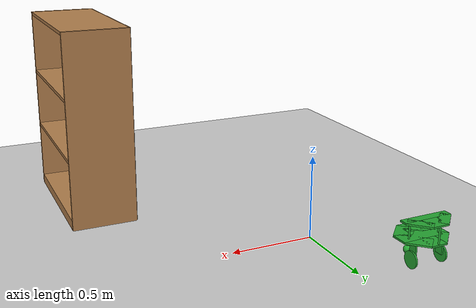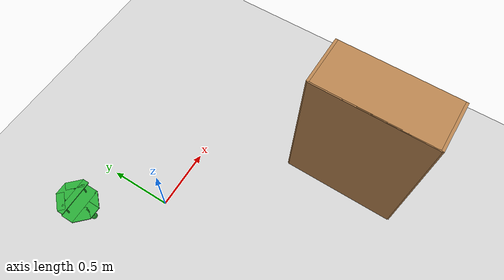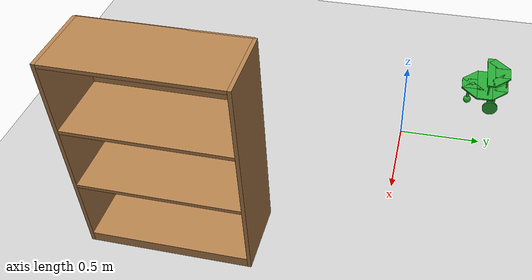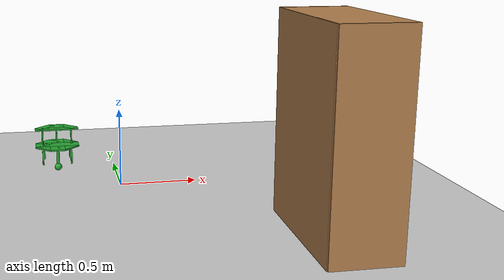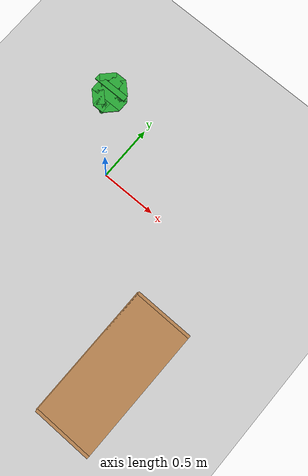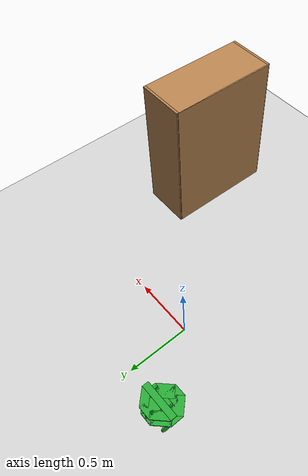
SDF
<sdf version="1.6">
 <world name="default">
  <model name="ground_plane">
   <static>1</static>
   <link name="link">
    <collision name="collision">
     <geometry><plane><normal>0 0 1</normal><size>100 100</size></plane></geometry>
     <surface><friction><ode><mu>100</mu><mu2>50</mu2></ode></friction></surface>
    </collision>
    <visual name="visual">
     <cast_shadows>0</cast_shadows>
     <geometry><plane><normal>0 0 1</normal><size>100 100</size></plane></geometry>
     <material>
      <script><uri>file://media/materials/scripts/gazebo.material</uri><name>Gazebo/Grey</name></script>
     </material>
    </visual>
   </link>
  </model>
  <model name="bookshelf_clone_1">
   <static>1</static>
   <link name="link">
    <inertial><mass>1</mass></inertial>
    <collision name="back">
     <pose>0 0.005 0.6 0 -0 0</pose>
     <geometry><box><size>0.9 0.01 1.2</size></box></geometry>
    </collision>
    <visual name="visual1">
     <pose>0 0.005 0.6 0 -0 0</pose>
     <geometry><box><size>0.9 0.01 1.2</size></box></geometry>
     <material>
      <script><uri>file://media/materials/scripts/gazebo.material</uri><name>Gazebo/Wood</name></script>
     </material>
    </visual>
    <collision name="left_side">
     <pose>0.45 -0.195 0.6 0 -0 0</pose>
     <geometry><box><size>0.02 0.4 1.2</size></box></geometry>
    </collision>
    <visual name="visual2">
     <pose>0.45 -0.195 0.6 0 -0 0</pose>
     <geometry><box><size>0.02 0.4 1.2</size></box></geometry>
     <material>
      <script><uri>file://media/materials/scripts/gazebo.material</uri><name>Gazebo/Wood</name></script>
     </material>
    </visual>
    <collision name="right_side">
     <pose>-0.45 -0.195 0.6 0 -0 0</pose>
     <geometry><box><size>0.02 0.4 1.2</size></box></geometry>
    </collision>
    <visual name="visual3">
     <pose>-0.45 -0.195 0.6 0 -0 0</pose>
     <geometry><box><size>0.02 0.4 1.2</size></box></geometry>
     <material>
      <script><uri>file://media/materials/scripts/gazebo.material</uri><name>Gazebo/Wood</name></script>
     </material>
    </visual>
    <collision name="bottom">
     <pose>0 -0.195 0.03 0 -0 0</pose>
     <geometry><box><size>0.88 0.4 0.06</size></box></geometry>
    </collision>
    <visual name="visual4">
     <pose>0 -0.195 0.03 0 -0 0</pose>
     <geometry><box><size>0.88 0.4 0.06</size></box></geometry>
     <material>
      <script><uri>file://media/materials/scripts/gazebo.material</uri><name>Gazebo/Wood</name></script>
     </material>
    </visual>
    <collision name="top">
     <pose>0 -0.195 1.19 0 -0 0</pose>
     <geometry><box><size>0.88 0.4 0.02</size></box></geometry>
    </collision>
    <visual name="visual5">
     <pose>0 -0.195 1.19 0 -0 0</pose>
     <geometry><box><size>0.88 0.4 0.02</size></box></geometry>
     <material>
      <script><uri>file://media/materials/scripts/gazebo.material</uri><name>Gazebo/Wood</name></script>
     </material>
    </visual>
    <collision name="low_shelf">
     <pose>0 -0.195 0.43 0 -0 0</pose>
     <geometry><box><size>0.88 0.4 0.02</size></box></geometry>
    </collision>
    <visual name="visual6">
     <pose>0 -0.195 0.43 0 -0 0</pose>
     <geometry><box><size>0.88 0.4 0.02</size></box></geometry>
     <material>
      <script><uri>file://media/materials/scripts/gazebo.material</uri><name>Gazebo/Wood</name></script>
     </material>
    </visual>
    <collision name="high_shelf">
     <pose>0 -0.195 0.8 0 -0 0</pose>
     <geometry><box><size>0.88 0.4 0.02</size></box></geometry>
    </collision>
    <visual name="visual7">
     <pose>0 -0.195 0.8 0 -0 0</pose>
     <geometry><box><size>0.88 0.4 0.02</size></box></geometry>
     <material>
      <script><uri>file://media/materials/scripts/gazebo.material</uri><name>Gazebo/Wood</name></script>
     </material>
    </visual>
   </link>
   <pose>0.848957 -1.11621 0 0 -0 1.56105</pose>
  </model>
  <model name="devRobot">
   <link name="base">
    <pose>0 0 0.155 0 -0 0</pose>
    <inertial>
     <mass>1.5</mass>
     <inertia>
      <ixx>0.166667</ixx>
      <ixy>0</ixy>
      <ixz>0</ixz>
      <iyy>0.166667</iyy>
      <iyz>0</iyz>
      <izz>0.166667</izz>
     </inertia>
    </inertial>
    <visual name="visual">
     <geometry><box><size>0.3 0.1 0.01</size></box></geometry>
     <material>
      <lighting>1</lighting>
      <script><uri>file://media/materials/scripts/gazebo.material</uri><name>Gazebo/Green</name></script>
      <shader type="pixel"><normal_map>__default__</normal_map></shader>
      <ambient>0 0.3 0 1</ambient>
      <diffuse>0 0.7 0 1</diffuse>
      <specular>0 0.01 0 1</specular>
      <emissive>0 0 0 1</emissive>
     </material>
    </visual>
    <collision name="collision">
     <geometry><box><size>0.3 0.1 0.01</size></box></geometry>
     <surface>
      <friction>
       <ode><mu>1</mu><mu2>1</mu2><fdir1>0 0 0</fdir1><slip1>0</slip1><slip2>0</slip2></ode>
       <torsional>
        <coefficient>1</coefficient>
        <patch_radius>0</patch_radius>
        <surface_radius>0</surface_radius>
        <use_patch_radius>1</use_patch_radius>
        <ode><slip>0</slip></ode>
       </torsional>
      </friction>
      <bounce><restitution_coefficient>0</restitution_coefficient><threshold>1e+06</threshold></bounce>
      <contact>
       <collide_without_contact>0</collide_without_contact>
       <collide_without_contact_bitmask>1</collide_without_contact_bitmask>
       <collide_bitmask>1</collide_bitmask>
       <ode>
        <soft_cfm>0</soft_cfm>
        <soft_erp>0.2</soft_erp>
        <kp>1e+13</kp>
        <kd>1</kd>
        <max_vel>0.01</max_vel>
        <min_depth>0</min_depth>
       </ode>
       <bullet>
        <split_impulse>1</split_impulse>
        <split_impulse_penetration_threshold>-0.01</split_impulse_penetration_threshold>
        <soft_cfm>0</soft_cfm>
        <soft_erp>0.2</soft_erp>
        <kp>1e+13</kp>
        <kd>1</kd>
       </bullet>
      </contact>
     </surface>
    </collision>
   </link>
   <link name="back">
    <pose>-0 -0.1 0.155 0 -0 0</pose>
    <inertial>
     <mass>2</mass>
     <inertia>
      <ixx>0.166667</ixx>
      <ixy>0</ixy>
      <ixz>0</ixz>
      <iyy>0.166667</iyy>
      <iyz>0</iyz>
      <izz>0.166667</izz>
     </inertia>
    </inertial>
    <visual name="visual">
     <geometry><box><size>0.1 0.1 0.01</size></box></geometry>
     <material>
      <lighting>1</lighting>
      <script><uri>file://media/materials/scripts/gazebo.material</uri><name>Gazebo/Green</name></script>
      <shader type="pixel"><normal_map>__default__</normal_map></shader>
      <ambient>0 0.3 0 1</ambient>
      <diffuse>0 0.7 0 1</diffuse>
      <specular>0 0.01 0 1</specular>
      <emissive>0 0 0 1</emissive>
     </material>
    </visual>
    <collision name="collision">
     <geometry><box><size>0.1 0.1 0.01</size></box></geometry>
     <surface>
      <friction>
       <ode><mu>1</mu><mu2>1</mu2><fdir1>0 0 0</fdir1><slip1>0</slip1><slip2>0</slip2></ode>
       <torsional>
        <coefficient>1</coefficient>
        <patch_radius>0</patch_radius>
        <surface_radius>0</surface_radius>
        <use_patch_radius>1</use_patch_radius>
        <ode><slip>0</slip></ode>
       </torsional>
      </friction>
      <bounce><restitution_coefficient>0</restitution_coefficient><threshold>1e+06</threshold></bounce>
      <contact>
       <collide_without_contact>0</collide_without_contact>
       <collide_without_contact_bitmask>1</collide_without_contact_bitmask>
       <collide_bitmask>1</collide_bitmask>
       <ode>
        <soft_cfm>0</soft_cfm>
        <soft_erp>0.2</soft_erp>
        <kp>1e+13</kp>
        <kd>1</kd>
        <max_vel>0.01</max_vel>
        <min_depth>0</min_depth>
       </ode>
       <bullet>
        <split_impulse>1</split_impulse>
        <split_impulse_penetration_threshold>-0.01</split_impulse_penetration_threshold>
        <soft_cfm>0</soft_cfm>
        <soft_erp>0.2</soft_erp>
        <kp>1e+13</kp>
        <kd>1</kd>
       </bullet>
      </contact>
     </surface>
    </collision>
   </link>
   <link name="backLeft">
    <pose>-0.065 -0.065 0.155 0 0 -0.78535</pose>
    <inertial>
     <mass>0.1</mass>
     <inertia>
      <ixx>0.166667</ixx>
      <ixy>0</ixy>
      <ixz>0</ixz>
      <iyy>0.166667</iyy>
      <iyz>0</iyz>
      <izz>0.166667</izz>
     </inertia>
    </inertial>
    <visual name="visual">
     <geometry><box><size>0.14 0.1 0.01</size></box></geometry>
     <material>
      <lighting>1</lighting>
      <script><uri>file://media/materials/scripts/gazebo.material</uri><name>Gazebo/Green</name></script>
      <shader type="pixel"><normal_map>__default__</normal_map></shader>
      <ambient>0 0.3 0 1</ambient>
      <diffuse>0 0.7 0 1</diffuse>
      <specular>0 0.01 0 1</specular>
      <emissive>0 0 0 1</emissive>
     </material>
    </visual>
    <collision name="collision">
     <geometry><box><size>0.14 0.1 0.01</size></box></geometry>
     <surface>
      <friction>
       <ode><mu>1</mu><mu2>1</mu2><fdir1>0 0 0</fdir1><slip1>0</slip1><slip2>0</slip2></ode>
       <torsional>
        <coefficient>1</coefficient>
        <patch_radius>0</patch_radius>
        <surface_radius>0</surface_radius>
        <use_patch_radius>1</use_patch_radius>
        <ode><slip>0</slip></ode>
       </torsional>
      </friction>
      <bounce><restitution_coefficient>0</restitution_coefficient><threshold>1e+06</threshold></bounce>
      <contact>
       <collide_without_contact>0</collide_without_contact>
       <collide_without_contact_bitmask>1</collide_without_contact_bitmask>
       <collide_bitmask>1</collide_bitmask>
       <ode>
        <soft_cfm>0</soft_cfm>
        <soft_erp>0.2</soft_erp>
        <kp>1e+13</kp>
        <kd>1</kd>
        <max_vel>0.01</max_vel>
        <min_depth>0</min_depth>
       </ode>
       <bullet>
        <split_impulse>1</split_impulse>
        <split_impulse_penetration_threshold>-0.01</split_impulse_penetration_threshold>
        <soft_cfm>0</soft_cfm>
        <soft_erp>0.2</soft_erp>
        <kp>1e+13</kp>
        <kd>1</kd>
       </bullet>
      </contact>
     </surface>
    </collision>
   </link>
   <link name="backRight">
    <pose>0.065 -0.065 0.155 0 -0 0.78535</pose>
    <inertial>
     <mass>0.1</mass>
     <inertia>
      <ixx>0.166667</ixx>
      <ixy>0</ixy>
      <ixz>0</ixz>
      <iyy>0.166667</iyy>
      <iyz>0</iyz>
      <izz>0.166667</izz>
     </inertia>
    </inertial>
    <visual name="visual">
     <geometry><box><size>0.14 0.1 0.01</size></box></geometry>
     <material>
      <lighting>1</lighting>
      <script><uri>file://media/materials/scripts/gazebo.material</uri><name>Gazebo/Green</name></script>
      <shader type="pixel"><normal_map>__default__</normal_map></shader>
      <ambient>0 0.3 0 1</ambient>
      <diffuse>0 0.7 0 1</diffuse>
      <specular>0 0.01 0 1</specular>
      <emissive>0 0 0 1</emissive>
     </material>
    </visual>
    <collision name="collision">
     <geometry><box><size>0.14 0.1 0.01</size></box></geometry>
     <surface>
      <friction>
       <ode><mu>1</mu><mu2>1</mu2><fdir1>0 0 0</fdir1><slip1>0</slip1><slip2>0</slip2></ode>
       <torsional>
        <coefficient>1</coefficient>
        <patch_radius>0</patch_radius>
        <surface_radius>0</surface_radius>
        <use_patch_radius>1</use_patch_radius>
        <ode><slip>0</slip></ode>
       </torsional>
      </friction>
      <bounce><restitution_coefficient>0</restitution_coefficient><threshold>1e+06</threshold></bounce>
      <contact>
       <collide_without_contact>0</collide_without_contact>
       <collide_without_contact_bitmask>1</collide_without_contact_bitmask>
       <collide_bitmask>1</collide_bitmask>
       <ode>
        <soft_cfm>0</soft_cfm>
        <soft_erp>0.2</soft_erp>
        <kp>1e+13</kp>
        <kd>1</kd>
        <max_vel>0.01</max_vel>
        <min_depth>0</min_depth>
       </ode>
       <bullet>
        <split_impulse>1</split_impulse>
        <split_impulse_penetration_threshold>-0.01</split_impulse_penetration_threshold>
        <soft_cfm>0</soft_cfm>
        <soft_erp>0.2</soft_erp>
        <kp>1e+13</kp>
        <kd>1</kd>
       </bullet>
      </contact>
     </surface>
    </collision>
   </link>
   <link name="front">
    <pose>-0 0.1 0.155 0 -0 0</pose>
    <inertial>
     <mass>0.1</mass>
     <inertia>
      <ixx>0.166667</ixx>
      <ixy>0</ixy>
      <ixz>0</ixz>
      <iyy>0.166667</iyy>
      <iyz>0</iyz>
      <izz>0.166667</izz>
     </inertia>
    </inertial>
    <visual name="visual">
     <geometry><box><size>0.1 0.1 0.01</size></box></geometry>
     <material>
      <lighting>1</lighting>
      <script><uri>file://media/materials/scripts/gazebo.material</uri><name>Gazebo/Green</name></script>
      <shader type="pixel"><normal_map>__default__</normal_map></shader>
      <ambient>0 0.3 0 1</ambient>
      <diffuse>0 0.7 0 1</diffuse>
      <specular>0 0.01 0 1</specular>
      <emissive>0 0 0 1</emissive>
     </material>
    </visual>
    <collision name="collision">
     <geometry><box><size>0.1 0.1 0.01</size></box></geometry>
     <surface>
      <friction>
       <ode><mu>1</mu><mu2>1</mu2><fdir1>0 0 0</fdir1><slip1>0</slip1><slip2>0</slip2></ode>
       <torsional>
        <coefficient>1</coefficient>
        <patch_radius>0</patch_radius>
        <surface_radius>0</surface_radius>
        <use_patch_radius>1</use_patch_radius>
        <ode><slip>0</slip></ode>
       </torsional>
      </friction>
      <bounce><restitution_coefficient>0</restitution_coefficient><threshold>1e+06</threshold></bounce>
      <contact>
       <collide_without_contact>0</collide_without_contact>
       <collide_without_contact_bitmask>1</collide_without_contact_bitmask>
       <collide_bitmask>1</collide_bitmask>
       <ode>
        <soft_cfm>0</soft_cfm>
        <soft_erp>0.2</soft_erp>
        <kp>1e+13</kp>
        <kd>1</kd>
        <max_vel>0.01</max_vel>
        <min_depth>0</min_depth>
       </ode>
       <bullet>
        <split_impulse>1</split_impulse>
        <split_impulse_penetration_threshold>-0.01</split_impulse_penetration_threshold>
        <soft_cfm>0</soft_cfm>
        <soft_erp>0.2</soft_erp>
        <kp>1e+13</kp>
        <kd>1</kd>
       </bullet>
      </contact>
     </surface>
    </collision>
   </link>
   <link name="frontLeft">
    <pose>-0.065 0.065 0.155 0 -0 0.78535</pose>
    <inertial>
     <mass>0.1</mass>
     <inertia>
      <ixx>0.166667</ixx>
      <ixy>0</ixy>
      <ixz>0</ixz>
      <iyy>0.166667</iyy>
      <iyz>0</iyz>
      <izz>0.166667</izz>
     </inertia>
    </inertial>
    <visual name="visual">
     <geometry><box><size>0.14 0.1 0.01</size></box></geometry>
     <material>
      <lighting>1</lighting>
      <script><uri>file://media/materials/scripts/gazebo.material</uri><name>Gazebo/Green</name></script>
      <shader type="pixel"><normal_map>__default__</normal_map></shader>
      <ambient>0 0.3 0 1</ambient>
      <diffuse>0 0.7 0 1</diffuse>
      <specular>0 0.01 0 1</specular>
      <emissive>0 0 0 1</emissive>
     </material>
    </visual>
    <collision name="collision">
     <geometry><box><size>0.14 0.1 0.01</size></box></geometry>
     <surface>
      <friction>
       <ode><mu>1</mu><mu2>1</mu2><fdir1>0 0 0</fdir1><slip1>0</slip1><slip2>0</slip2></ode>
       <torsional>
        <coefficient>1</coefficient>
        <patch_radius>0</patch_radius>
        <surface_radius>0</surface_radius>
        <use_patch_radius>1</use_patch_radius>
        <ode><slip>0</slip></ode>
       </torsional>
      </friction>
      <bounce><restitution_coefficient>0</restitution_coefficient><threshold>1e+06</threshold></bounce>
      <contact>
       <collide_without_contact>0</collide_without_contact>
       <collide_without_contact_bitmask>1</collide_without_contact_bitmask>
       <collide_bitmask>1</collide_bitmask>
       <ode>
        <soft_cfm>0</soft_cfm>
        <soft_erp>0.2</soft_erp>
        <kp>1e+13</kp>
        <kd>1</kd>
        <max_vel>0.01</max_vel>
        <min_depth>0</min_depth>
       </ode>
       <bullet>
        <split_impulse>1</split_impulse>
        <split_impulse_penetration_threshold>-0.01</split_impulse_penetration_threshold>
        <soft_cfm>0</soft_cfm>
        <soft_erp>0.2</soft_erp>
        <kp>1e+13</kp>
        <kd>1</kd>
       </bullet>
      </contact>
     </surface>
    </collision>
   </link>
   <link name="frontRight">
    <pose>0.065 0.065 0.155 0 0 -0.78535</pose>
    <inertial>
     <mass>0.1</mass>
     <inertia>
      <ixx>0.166667</ixx>
      <ixy>0</ixy>
      <ixz>0</ixz>
      <iyy>0.166667</iyy>
      <iyz>0</iyz>
      <izz>0.166667</izz>
     </inertia>
    </inertial>
    <visual name="visual">
     <geometry><box><size>0.14 0.1 0.01</size></box></geometry>
     <material>
      <lighting>1</lighting>
      <script><uri>file://media/materials/scripts/gazebo.material</uri><name>Gazebo/Green</name></script>
      <shader type="pixel"><normal_map>__default__</normal_map></shader>
      <ambient>0 0.3 0 1</ambient>
      <diffuse>0 0.7 0 1</diffuse>
      <specular>0 0.01 0 1</specular>
      <emissive>0 0 0 1</emissive>
     </material>
    </visual>
    <collision name="collision">
     <geometry><box><size>0.14 0.1 0.01</size></box></geometry>
     <surface>
      <friction>
       <ode><mu>1</mu><mu2>1</mu2><fdir1>0 0 0</fdir1><slip1>0</slip1><slip2>0</slip2></ode>
       <torsional>
        <coefficient>1</coefficient>
        <patch_radius>0</patch_radius>
        <surface_radius>0</surface_radius>
        <use_patch_radius>1</use_patch_radius>
        <ode><slip>0</slip></ode>
       </torsional>
      </friction>
      <bounce><restitution_coefficient>0</restitution_coefficient><threshold>1e+06</threshold></bounce>
      <contact>
       <collide_without_contact>0</collide_without_contact>
       <collide_without_contact_bitmask>1</collide_without_contact_bitmask>
       <collide_bitmask>1</collide_bitmask>
       <ode>
        <soft_cfm>0</soft_cfm>
        <soft_erp>0.2</soft_erp>
        <kp>1e+13</kp>
        <kd>1</kd>
        <max_vel>0.01</max_vel>
        <min_depth>0</min_depth>
       </ode>
       <bullet>
        <split_impulse>1</split_impulse>
        <split_impulse_penetration_threshold>-0.01</split_impulse_penetration_threshold>
        <soft_cfm>0</soft_cfm>
        <soft_erp>0.2</soft_erp>
        <kp>1e+13</kp>
        <kd>1</kd>
       </bullet>
      </contact>
     </surface>
    </collision>
   </link>
   <link name="link_0">
    <pose>0.1 0.05 0.05 -3e-06 1.5707 -3e-06</pose>
    <inertial>
     <mass>1</mass>
     <inertia><ixx>0.145833</ixx><ixy>0</ixy><ixz>0</ixz><iyy>0.145833</iyy><iyz>0</iyz><izz>0.125</izz></inertia>
    </inertial>
    <visual name="visual">
     <geometry><cylinder><radius>0.05</radius><length>0.01</length></cylinder></geometry>
     <material>
      <lighting>1</lighting>
      <script><uri>file://media/materials/scripts/gazebo.material</uri><name>Gazebo/Green</name></script>
      <shader type="pixel"><normal_map>__default__</normal_map></shader>
      <ambient>0 0.3 0 1</ambient>
      <diffuse>0 0.7 0 1</diffuse>
      <specular>0 0.01 0 1</specular>
      <emissive>0 0 0 1</emissive>
     </material>
    </visual>
    <collision name="collision">
     <geometry><cylinder><radius>0.05</radius><length>0.01</length></cylinder></geometry>
     <surface>
      <friction>
       <ode><mu>1</mu><mu2>1</mu2><fdir1>0 0 0</fdir1><slip1>0</slip1><slip2>0</slip2></ode>
       <torsional>
        <coefficient>1</coefficient>
        <patch_radius>0</patch_radius>
        <surface_radius>0</surface_radius>
        <use_patch_radius>1</use_patch_radius>
        <ode><slip>0</slip></ode>
       </torsional>
      </friction>
      <bounce><restitution_coefficient>0</restitution_coefficient><threshold>1e+06</threshold></bounce>
      <contact>
       <collide_without_contact>0</collide_without_contact>
       <collide_without_contact_bitmask>1</collide_without_contact_bitmask>
       <collide_bitmask>1</collide_bitmask>
       <ode>
        <soft_cfm>0</soft_cfm>
        <soft_erp>0.2</soft_erp>
        <kp>1e+13</kp>
        <kd>1</kd>
        <max_vel>0.01</max_vel>
        <min_depth>0</min_depth>
       </ode>
       <bullet>
        <split_impulse>1</split_impulse>
        <split_impulse_penetration_threshold>-0.01</split_impulse_penetration_threshold>
        <soft_cfm>0</soft_cfm>
        <soft_erp>0.2</soft_erp>
        <kp>1e+13</kp>
        <kd>1</kd>
       </bullet>
      </contact>
     </surface>
    </collision>
   </link>
   <link name="link_0_clone">
    <pose>-0.1 0.05 0.05 -3e-06 1.5707 -3e-06</pose>
    <inertial>
     <mass>1</mass>
     <inertia><ixx>0.145833</ixx><ixy>0</ixy><ixz>0</ixz><iyy>0.145833</iyy><iyz>0</iyz><izz>0.125</izz></inertia>
    </inertial>
    <visual name="visual">
     <geometry><cylinder><radius>0.05</radius><length>0.01</length></cylinder></geometry>
     <material>
      <lighting>1</lighting>
      <script><uri>file://media/materials/scripts/gazebo.material</uri><name>Gazebo/Green</name></script>
      <shader type="pixel"><normal_map>__default__</normal_map></shader>
      <ambient>0 0.3 0 1</ambient>
      <diffuse>0 0.7 0 1</diffuse>
      <specular>0 0.01 0 1</specular>
      <emissive>0 0 0 1</emissive>
     </material>
    </visual>
    <collision name="collision">
     <geometry><cylinder><radius>0.05</radius><length>0.01</length></cylinder></geometry>
     <surface>
      <friction>
       <ode><mu>1</mu><mu2>1</mu2><fdir1>0 0 0</fdir1><slip1>0</slip1><slip2>0</slip2></ode>
       <torsional>
        <coefficient>1</coefficient>
        <patch_radius>0</patch_radius>
        <surface_radius>0</surface_radius>
        <use_patch_radius>1</use_patch_radius>
        <ode><slip>0</slip></ode>
       </torsional>
      </friction>
      <bounce><restitution_coefficient>0</restitution_coefficient><threshold>1e+06</threshold></bounce>
      <contact>
       <collide_without_contact>0</collide_without_contact>
       <collide_without_contact_bitmask>1</collide_without_contact_bitmask>
       <collide_bitmask>1</collide_bitmask>
       <ode>
        <soft_cfm>0</soft_cfm>
        <soft_erp>0.2</soft_erp>
        <kp>1e+13</kp>
        <kd>1</kd>
        <max_vel>0.01</max_vel>
        <min_depth>0</min_depth>
       </ode>
       <bullet>
        <split_impulse>1</split_impulse>
        <split_impulse_penetration_threshold>-0.01</split_impulse_penetration_threshold>
        <soft_cfm>0</soft_cfm>
        <soft_erp>0.2</soft_erp>
        <kp>1e+13</kp>
        <kd>1</kd>
       </bullet>
      </contact>
     </surface>
    </collision>
   </link>
   <link name="link_1">
    <pose>0.09 0.05 0.1 0 -0 0</pose>
    <inertial>
     <mass>1</mass>
     <inertia>
      <ixx>0.166667</ixx>
      <ixy>0</ixy>
      <ixz>0</ixz>
      <iyy>0.166667</iyy>
      <iyz>0</iyz>
      <izz>0.166667</izz>
     </inertia>
    </inertial>
    <visual name="visual">
     <geometry><box><size>0.01 0.05 0.1</size></box></geometry>
     <material>
      <lighting>1</lighting>
      <script><uri>file://media/materials/scripts/gazebo.material</uri><name>Gazebo/Green</name></script>
      <shader type="pixel"><normal_map>__default__</normal_map></shader>
      <ambient>0 0.3 0 1</ambient>
      <diffuse>0 0.7 0 1</diffuse>
      <specular>0 0.01 0 1</specular>
      <emissive>0 0 0 1</emissive>
     </material>
    </visual>
    <collision name="collision">
     <geometry><box><size>0.01 0.05 0.1</size></box></geometry>
     <surface>
      <friction>
       <ode><mu>1</mu><mu2>1</mu2><fdir1>0 0 0</fdir1><slip1>0</slip1><slip2>0</slip2></ode>
       <torsional>
        <coefficient>1</coefficient>
        <patch_radius>0</patch_radius>
        <surface_radius>0</surface_radius>
        <use_patch_radius>1</use_patch_radius>
        <ode><slip>0</slip></ode>
       </torsional>
      </friction>
      <bounce><restitution_coefficient>0</restitution_coefficient><threshold>1e+06</threshold></bounce>
      <contact>
       <collide_without_contact>0</collide_without_contact>
       <collide_without_contact_bitmask>1</collide_without_contact_bitmask>
       <collide_bitmask>1</collide_bitmask>
       <ode>
        <soft_cfm>0</soft_cfm>
        <soft_erp>0.2</soft_erp>
        <kp>1e+13</kp>
        <kd>1</kd>
        <max_vel>0.01</max_vel>
        <min_depth>0</min_depth>
       </ode>
       <bullet>
        <split_impulse>1</split_impulse>
        <split_impulse_penetration_threshold>-0.01</split_impulse_penetration_threshold>
        <soft_cfm>0</soft_cfm>
        <soft_erp>0.2</soft_erp>
        <kp>1e+13</kp>
        <kd>1</kd>
       </bullet>
      </contact>
     </surface>
    </collision>
   </link>
   <link name="link_1_clone">
    <pose>-0.09 0.05 0.1 0 -0 0</pose>
    <inertial>
     <mass>1</mass>
     <inertia>
      <ixx>0.166667</ixx>
      <ixy>0</ixy>
      <ixz>0</ixz>
      <iyy>0.166667</iyy>
      <iyz>0</iyz>
      <izz>0.166667</izz>
     </inertia>
    </inertial>
    <visual name="visual">
     <geometry><box><size>0.01 0.05 0.1</size></box></geometry>
     <material>
      <lighting>1</lighting>
      <script><uri>file://media/materials/scripts/gazebo.material</uri><name>Gazebo/Green</name></script>
      <shader type="pixel"><normal_map>__default__</normal_map></shader>
      <ambient>0 0.3 0 1</ambient>
      <diffuse>0 0.7 0 1</diffuse>
      <specular>0 0.01 0 1</specular>
      <emissive>0 0 0 1</emissive>
     </material>
    </visual>
    <collision name="collision">
     <geometry><box><size>0.01 0.05 0.1</size></box></geometry>
     <surface>
      <friction>
       <ode><mu>1</mu><mu2>1</mu2><fdir1>0 0 0</fdir1><slip1>0</slip1><slip2>0</slip2></ode>
       <torsional>
        <coefficient>1</coefficient>
        <patch_radius>0</patch_radius>
        <surface_radius>0</surface_radius>
        <use_patch_radius>1</use_patch_radius>
        <ode><slip>0</slip></ode>
       </torsional>
      </friction>
      <bounce><restitution_coefficient>0</restitution_coefficient><threshold>1e+06</threshold></bounce>
      <contact>
       <collide_without_contact>0</collide_without_contact>
       <collide_without_contact_bitmask>1</collide_without_contact_bitmask>
       <collide_bitmask>1</collide_bitmask>
       <ode>
        <soft_cfm>0</soft_cfm>
        <soft_erp>0.2</soft_erp>
        <kp>1e+13</kp>
        <kd>1</kd>
        <max_vel>0.01</max_vel>
        <min_depth>0</min_depth>
       </ode>
       <bullet>
        <split_impulse>1</split_impulse>
        <split_impulse_penetration_threshold>-0.01</split_impulse_penetration_threshold>
        <soft_cfm>0</soft_cfm>
        <soft_erp>0.2</soft_erp>
        <kp>1e+13</kp>
        <kd>1</kd>
       </bullet>
      </contact>
     </surface>
    </collision>
   </link>
   <link name="link_2">
    <pose>-0 -0.1 0.1 0 -0 0</pose>
    <inertial>
     <mass>1</mass>
     <inertia><ixx>0.145833</ixx><ixy>0</ixy><ixz>0</ixz><iyy>0.145833</iyy><iyz>0</iyz><izz>0.125</izz></inertia>
    </inertial>
    <visual name="visual">
     <geometry><cylinder><radius>0.01</radius><length>0.1</length></cylinder></geometry>
     <material>
      <lighting>1</lighting>
      <script><uri>file://media/materials/scripts/gazebo.material</uri><name>Gazebo/Green</name></script>
      <shader type="pixel"><normal_map>__default__</normal_map></shader>
      <ambient>0 0.3 0 1</ambient>
      <diffuse>0 0.7 0 1</diffuse>
      <specular>0 0.01 0 1</specular>
      <emissive>0 0 0 1</emissive>
     </material>
    </visual>
    <collision name="collision">
     <geometry><cylinder><radius>0.01</radius><length>0.1</length></cylinder></geometry>
     <surface>
      <friction>
       <ode><mu>1</mu><mu2>1</mu2><fdir1>0 0 0</fdir1><slip1>0</slip1><slip2>0</slip2></ode>
       <torsional>
        <coefficient>1</coefficient>
        <patch_radius>0</patch_radius>
        <surface_radius>0</surface_radius>
        <use_patch_radius>1</use_patch_radius>
        <ode><slip>0</slip></ode>
       </torsional>
      </friction>
      <bounce><restitution_coefficient>0</restitution_coefficient><threshold>1e+06</threshold></bounce>
      <contact>
       <collide_without_contact>0</collide_without_contact>
       <collide_without_contact_bitmask>1</collide_without_contact_bitmask>
       <collide_bitmask>1</collide_bitmask>
       <ode>
        <soft_cfm>0</soft_cfm>
        <soft_erp>0.2</soft_erp>
        <kp>1e+13</kp>
        <kd>1</kd>
        <max_vel>0.01</max_vel>
        <min_depth>0</min_depth>
       </ode>
       <bullet>
        <split_impulse>1</split_impulse>
        <split_impulse_penetration_threshold>-0.01</split_impulse_penetration_threshold>
        <soft_cfm>0</soft_cfm>
        <soft_erp>0.2</soft_erp>
        <kp>1e+13</kp>
        <kd>1</kd>
       </bullet>
      </contact>
     </surface>
    </collision>
   </link>
   <link name="link_3">
    <pose>-0 -0.1 0.025 0 -0 0</pose>
    <inertial>
     <mass>1</mass>
     <inertia><ixx>0.1</ixx><ixy>0</ixy><ixz>0</ixz><iyy>0.1</iyy><iyz>0</iyz><izz>0.1</izz></inertia>
    </inertial>
    <visual name="visual">
     <geometry><sphere><radius>0.025</radius></sphere></geometry>
     <material>
      <lighting>1</lighting>
      <script><uri>file://media/materials/scripts/gazebo.material</uri><name>Gazebo/Green</name></script>
      <shader type="pixel"><normal_map>__default__</normal_map></shader>
      <ambient>0 0.3 0 1</ambient>
      <diffuse>0 0.7 0 1</diffuse>
      <specular>0 0.01 0 1</specular>
      <emissive>0 0 0 1</emissive>
     </material>
    </visual>
    <collision name="collision">
     <geometry><sphere><radius>0.025</radius></sphere></geometry>
     <surface>
      <friction>
       <ode><mu>1</mu><mu2>1</mu2><fdir1>0 0 0</fdir1><slip1>0</slip1><slip2>0</slip2></ode>
       <torsional>
        <coefficient>1</coefficient>
        <patch_radius>0</patch_radius>
        <surface_radius>0</surface_radius>
        <use_patch_radius>1</use_patch_radius>
        <ode><slip>0</slip></ode>
       </torsional>
      </friction>
      <bounce><restitution_coefficient>0</restitution_coefficient><threshold>1e+06</threshold></bounce>
      <contact>
       <collide_without_contact>0</collide_without_contact>
       <collide_without_contact_bitmask>1</collide_without_contact_bitmask>
       <collide_bitmask>1</collide_bitmask>
       <ode>
        <soft_cfm>0</soft_cfm>
        <soft_erp>0.2</soft_erp>
        <kp>1e+13</kp>
        <kd>1</kd>
        <max_vel>0.01</max_vel>
        <min_depth>0</min_depth>
       </ode>
       <bullet>
        <split_impulse>1</split_impulse>
        <split_impulse_penetration_threshold>-0.01</split_impulse_penetration_threshold>
        <soft_cfm>0</soft_cfm>
        <soft_erp>0.2</soft_erp>
        <kp>1e+13</kp>
        <kd>1</kd>
       </bullet>
      </contact>
     </surface>
    </collision>
   </link>
   <link name="spaceholder">
    <pose>0 0.14 0.21 0 -0 0</pose>
    <inertial>
     <mass>0.1</mass>
     <inertia><ixx>0.145833</ixx><ixy>0</ixy><ixz>0</ixz><iyy>0.145833</iyy><iyz>0</iyz><izz>0.125</izz></inertia>
    </inertial>
    <visual name="visual">
     <geometry><cylinder><radius>0.005</radius><length>0.1</length></cylinder></geometry>
     <material>
      <lighting>1</lighting>
      <script><uri>file://media/materials/scripts/gazebo.material</uri><name>Gazebo/Green</name></script>
      <shader type="pixel"><normal_map>__default__</normal_map></shader>
      <ambient>0 0.3 0 1</ambient>
      <diffuse>0 0.7 0 1</diffuse>
      <specular>0 0.01 0 1</specular>
      <emissive>0 0 0 1</emissive>
     </material>
    </visual>
    <collision name="collision">
     <geometry><cylinder><radius>0.005</radius><length>0.1</length></cylinder></geometry>
     <surface>
      <friction>
       <ode><mu>1</mu><mu2>1</mu2><fdir1>0 0 0</fdir1><slip1>0</slip1><slip2>0</slip2></ode>
       <torsional>
        <coefficient>1</coefficient>
        <patch_radius>0</patch_radius>
        <surface_radius>0</surface_radius>
        <use_patch_radius>1</use_patch_radius>
        <ode><slip>0</slip></ode>
       </torsional>
      </friction>
      <bounce><restitution_coefficient>0</restitution_coefficient><threshold>1e+06</threshold></bounce>
      <contact>
       <collide_without_contact>0</collide_without_contact>
       <collide_without_contact_bitmask>1</collide_without_contact_bitmask>
       <collide_bitmask>1</collide_bitmask>
       <ode>
        <soft_cfm>0</soft_cfm>
        <soft_erp>0.2</soft_erp>
        <kp>1e+13</kp>
        <kd>1</kd>
        <max_vel>0.01</max_vel>
        <min_depth>0</min_depth>
       </ode>
       <bullet>
        <split_impulse>1</split_impulse>
        <split_impulse_penetration_threshold>-0.01</split_impulse_penetration_threshold>
        <soft_cfm>0</soft_cfm>
        <soft_erp>0.2</soft_erp>
        <kp>1e+13</kp>
        <kd>1</kd>
       </bullet>
      </contact>
     </surface>
    </collision>
   </link>
   <link name="spaceholder_1">
    <pose>0.1 0.02 0.21 0 -0 0</pose>
    <inertial>
     <mass>0.1</mass>
     <inertia><ixx>0.145833</ixx><ixy>0</ixy><ixz>0</ixz><iyy>0.145833</iyy><iyz>0</iyz><izz>0.125</izz></inertia>
    </inertial>
    <visual name="visual">
     <geometry><cylinder><radius>0.005</radius><length>0.1</length></cylinder></geometry>
     <material>
      <lighting>1</lighting>
      <script><uri>file://media/materials/scripts/gazebo.material</uri><name>Gazebo/Green</name></script>
      <shader type="pixel"><normal_map>__default__</normal_map></shader>
      <ambient>0 0.3 0 1</ambient>
      <diffuse>0 0.7 0 1</diffuse>
      <specular>0 0.01 0 1</specular>
      <emissive>0 0 0 1</emissive>
     </material>
    </visual>
    <collision name="collision">
     <geometry><cylinder><radius>0.005</radius><length>0.1</length></cylinder></geometry>
     <surface>
      <friction>
       <ode><mu>1</mu><mu2>1</mu2><fdir1>0 0 0</fdir1><slip1>0</slip1><slip2>0</slip2></ode>
       <torsional>
        <coefficient>1</coefficient>
        <patch_radius>0</patch_radius>
        <surface_radius>0</surface_radius>
        <use_patch_radius>1</use_patch_radius>
        <ode><slip>0</slip></ode>
       </torsional>
      </friction>
      <bounce><restitution_coefficient>0</restitution_coefficient><threshold>1e+06</threshold></bounce>
      <contact>
       <collide_without_contact>0</collide_without_contact>
       <collide_without_contact_bitmask>1</collide_without_contact_bitmask>
       <collide_bitmask>1</collide_bitmask>
       <ode>
        <soft_cfm>0</soft_cfm>
        <soft_erp>0.2</soft_erp>
        <kp>1e+13</kp>
        <kd>1</kd>
        <max_vel>0.01</max_vel>
        <min_depth>0</min_depth>
       </ode>
       <bullet>
        <split_impulse>1</split_impulse>
        <split_impulse_penetration_threshold>-0.01</split_impulse_penetration_threshold>
        <soft_cfm>0</soft_cfm>
        <soft_erp>0.2</soft_erp>
        <kp>1e+13</kp>
        <kd>1</kd>
       </bullet>
      </contact>
     </surface>
    </collision>
   </link>
   <link name="spaceholder_2">
    <pose>-0.1 0.02 0.21 0 -0 0</pose>
    <inertial>
     <mass>0.1</mass>
     <inertia><ixx>0.145833</ixx><ixy>0</ixy><ixz>0</ixz><iyy>0.145833</iyy><iyz>0</iyz><izz>0.125</izz></inertia>
    </inertial>
    <visual name="visual">
     <geometry><cylinder><radius>0.005</radius><length>0.1</length></cylinder></geometry>
     <material>
      <lighting>1</lighting>
      <script><uri>file://media/materials/scripts/gazebo.material</uri><name>Gazebo/Green</name></script>
      <shader type="pixel"><normal_map>__default__</normal_map></shader>
      <ambient>0 0.3 0 1</ambient>
      <diffuse>0 0.7 0 1</diffuse>
      <specular>0 0.01 0 1</specular>
      <emissive>0 0 0 1</emissive>
     </material>
    </visual>
    <collision name="collision">
     <geometry><cylinder><radius>0.005</radius><length>0.1</length></cylinder></geometry>
     <surface>
      <friction>
       <ode><mu>1</mu><mu2>1</mu2><fdir1>0 0 0</fdir1><slip1>0</slip1><slip2>0</slip2></ode>
       <torsional>
        <coefficient>1</coefficient>
        <patch_radius>0</patch_radius>
        <surface_radius>0</surface_radius>
        <use_patch_radius>1</use_patch_radius>
        <ode><slip>0</slip></ode>
       </torsional>
      </friction>
      <bounce><restitution_coefficient>0</restitution_coefficient><threshold>1e+06</threshold></bounce>
      <contact>
       <collide_without_contact>0</collide_without_contact>
       <collide_without_contact_bitmask>1</collide_without_contact_bitmask>
       <collide_bitmask>1</collide_bitmask>
       <ode>
        <soft_cfm>0</soft_cfm>
        <soft_erp>0.2</soft_erp>
        <kp>1e+13</kp>
        <kd>1</kd>
        <max_vel>0.01</max_vel>
        <min_depth>0</min_depth>
       </ode>
       <bullet>
        <split_impulse>1</split_impulse>
        <split_impulse_penetration_threshold>-0.01</split_impulse_penetration_threshold>
        <soft_cfm>0</soft_cfm>
        <soft_erp>0.2</soft_erp>
        <kp>1e+13</kp>
        <kd>1</kd>
       </bullet>
      </contact>
     </surface>
    </collision>
   </link>
   <link name="topFront">
    <pose>-0 0.1 0.265 0 -0 0</pose>
    <inertial>
     <mass>0.1</mass>
     <inertia>
      <ixx>0.166667</ixx>
      <ixy>0</ixy>
      <ixz>0</ixz>
      <iyy>0.166667</iyy>
      <iyz>0</iyz>
      <izz>0.166667</izz>
     </inertia>
    </inertial>
    <visual name="visual">
     <geometry><box><size>0.1 0.1 0.01</size></box></geometry>
     <material>
      <lighting>1</lighting>
      <script><uri>file://media/materials/scripts/gazebo.material</uri><name>Gazebo/Green</name></script>
      <shader type="pixel"><normal_map>__default__</normal_map></shader>
      <ambient>0 0.3 0 1</ambient>
      <diffuse>0 0.7 0 1</diffuse>
      <specular>0 0.01 0 1</specular>
      <emissive>0 0 0 1</emissive>
     </material>
    </visual>
    <collision name="collision">
     <geometry><box><size>0.1 0.1 0.01</size></box></geometry>
     <surface>
      <friction>
       <ode><mu>1</mu><mu2>1</mu2><fdir1>0 0 0</fdir1><slip1>0</slip1><slip2>0</slip2></ode>
       <torsional>
        <coefficient>1</coefficient>
        <patch_radius>0</patch_radius>
        <surface_radius>0</surface_radius>
        <use_patch_radius>1</use_patch_radius>
        <ode><slip>0</slip></ode>
       </torsional>
      </friction>
      <bounce><restitution_coefficient>0</restitution_coefficient><threshold>1e+06</threshold></bounce>
      <contact>
       <collide_without_contact>0</collide_without_contact>
       <collide_without_contact_bitmask>1</collide_without_contact_bitmask>
       <collide_bitmask>1</collide_bitmask>
       <ode>
        <soft_cfm>0</soft_cfm>
        <soft_erp>0.2</soft_erp>
        <kp>1e+13</kp>
        <kd>1</kd>
        <max_vel>0.01</max_vel>
        <min_depth>0</min_depth>
       </ode>
       <bullet>
        <split_impulse>1</split_impulse>
        <split_impulse_penetration_threshold>-0.01</split_impulse_penetration_threshold>
        <soft_cfm>0</soft_cfm>
        <soft_erp>0.2</soft_erp>
        <kp>1e+13</kp>
        <kd>1</kd>
       </bullet>
      </contact>
     </surface>
    </collision>
   </link>
   <link name="topFrontLeft">
    <pose>-0.08 0.08 0.265 0 -0 0.78535</pose>
    <inertial>
     <mass>0.1</mass>
     <inertia>
      <ixx>0.166667</ixx>
      <ixy>0</ixy>
      <ixz>0</ixz>
      <iyy>0.166667</iyy>
      <iyz>0</iyz>
      <izz>0.166667</izz>
     </inertia>
    </inertial>
    <visual name="visual">
     <geometry><box><size>0.14 0.06 0.01</size></box></geometry>
     <material>
      <lighting>1</lighting>
      <script><uri>file://media/materials/scripts/gazebo.material</uri><name>Gazebo/Green</name></script>
      <shader type="pixel"><normal_map>__default__</normal_map></shader>
      <ambient>0 0.3 0 1</ambient>
      <diffuse>0 0.7 0 1</diffuse>
      <specular>0 0.01 0 1</specular>
      <emissive>0 0 0 1</emissive>
     </material>
    </visual>
    <collision name="collision">
     <geometry><box><size>0.14 0.06 0.01</size></box></geometry>
     <surface>
      <friction>
       <ode><mu>1</mu><mu2>1</mu2><fdir1>0 0 0</fdir1><slip1>0</slip1><slip2>0</slip2></ode>
       <torsional>
        <coefficient>1</coefficient>
        <patch_radius>0</patch_radius>
        <surface_radius>0</surface_radius>
        <use_patch_radius>1</use_patch_radius>
        <ode><slip>0</slip></ode>
       </torsional>
      </friction>
      <bounce><restitution_coefficient>0</restitution_coefficient><threshold>1e+06</threshold></bounce>
      <contact>
       <collide_without_contact>0</collide_without_contact>
       <collide_without_contact_bitmask>1</collide_without_contact_bitmask>
       <collide_bitmask>1</collide_bitmask>
       <ode>
        <soft_cfm>0</soft_cfm>
        <soft_erp>0.2</soft_erp>
        <kp>1e+13</kp>
        <kd>1</kd>
        <max_vel>0.01</max_vel>
        <min_depth>0</min_depth>
       </ode>
       <bullet>
        <split_impulse>1</split_impulse>
        <split_impulse_penetration_threshold>-0.01</split_impulse_penetration_threshold>
        <soft_cfm>0</soft_cfm>
        <soft_erp>0.2</soft_erp>
        <kp>1e+13</kp>
        <kd>1</kd>
       </bullet>
      </contact>
     </surface>
    </collision>
   </link>
   <link name="topFrontRight">
    <pose>0.08 0.08 0.265 0 0 -0.78535</pose>
    <inertial>
     <mass>0.1</mass>
     <inertia>
      <ixx>0.166667</ixx>
      <ixy>0</ixy>
      <ixz>0</ixz>
      <iyy>0.166667</iyy>
      <iyz>0</iyz>
      <izz>0.166667</izz>
     </inertia>
    </inertial>
    <visual name="visual">
     <geometry><box><size>0.14 0.06 0.01</size></box></geometry>
     <material>
      <lighting>1</lighting>
      <script><uri>file://media/materials/scripts/gazebo.material</uri><name>Gazebo/Green</name></script>
      <shader type="pixel"><normal_map>__default__</normal_map></shader>
      <ambient>0 0.3 0 1</ambient>
      <diffuse>0 0.7 0 1</diffuse>
      <specular>0 0.01 0 1</specular>
      <emissive>0 0 0 1</emissive>
     </material>
    </visual>
    <collision name="collision">
     <geometry><box><size>0.14 0.06 0.01</size></box></geometry>
     <surface>
      <friction>
       <ode><mu>1</mu><mu2>1</mu2><fdir1>0 0 0</fdir1><slip1>0</slip1><slip2>0</slip2></ode>
       <torsional>
        <coefficient>1</coefficient>
        <patch_radius>0</patch_radius>
        <surface_radius>0</surface_radius>
        <use_patch_radius>1</use_patch_radius>
        <ode><slip>0</slip></ode>
       </torsional>
      </friction>
      <bounce><restitution_coefficient>0</restitution_coefficient><threshold>1e+06</threshold></bounce>
      <contact>
       <collide_without_contact>0</collide_without_contact>
       <collide_without_contact_bitmask>1</collide_without_contact_bitmask>
       <collide_bitmask>1</collide_bitmask>
       <ode>
        <soft_cfm>0</soft_cfm>
        <soft_erp>0.2</soft_erp>
        <kp>1e+13</kp>
        <kd>1</kd>
        <max_vel>0.01</max_vel>
        <min_depth>0</min_depth>
       </ode>
       <bullet>
        <split_impulse>1</split_impulse>
        <split_impulse_penetration_threshold>-0.01</split_impulse_penetration_threshold>
        <soft_cfm>0</soft_cfm>
        <soft_erp>0.2</soft_erp>
        <kp>1e+13</kp>
        <kd>1</kd>
       </bullet>
      </contact>
     </surface>
    </collision>
   </link>
   <link name="topplate">
    <pose>0 -0 0.265 0 -0 0</pose>
    <inertial>
     <mass>0.1</mass>
     <inertia>
      <ixx>0.166667</ixx>
      <ixy>0</ixy>
      <ixz>0</ixz>
      <iyy>0.166667</iyy>
      <iyz>0</iyz>
      <izz>0.166667</izz>
     </inertia>
    </inertial>
    <visual name="visual">
     <pose>0 0.025 0 0 -0 0</pose>
     <geometry><box><size>0.3 0.05 0.01</size></box></geometry>
     <material>
      <lighting>1</lighting>
      <script><uri>file://media/materials/scripts/gazebo.material</uri><name>Gazebo/Green</name></script>
      <shader type="pixel"><normal_map>__default__</normal_map></shader>
      <ambient>0 0.3 0 1</ambient>
      <diffuse>0 0.7 0 1</diffuse>
      <specular>0 0.01 0 1</specular>
      <emissive>0 0 0 1</emissive>
     </material>
    </visual>
    <collision name="collision">
     <pose>0 0.025 0 0 -0 0</pose>
     <geometry><box><size>0.3 0.05 0.01</size></box></geometry>
     <surface>
      <friction>
       <ode><mu>1</mu><mu2>1</mu2><fdir1>0 0 0</fdir1><slip1>0</slip1><slip2>0</slip2></ode>
       <torsional>
        <coefficient>1</coefficient>
        <patch_radius>0</patch_radius>
        <surface_radius>0</surface_radius>
        <use_patch_radius>1</use_patch_radius>
        <ode><slip>0</slip></ode>
       </torsional>
      </friction>
      <bounce><restitution_coefficient>0</restitution_coefficient><threshold>1e+06</threshold></bounce>
      <contact>
       <collide_without_contact>0</collide_without_contact>
       <collide_without_contact_bitmask>1</collide_without_contact_bitmask>
       <collide_bitmask>1</collide_bitmask>
       <ode>
        <soft_cfm>0</soft_cfm>
        <soft_erp>0.2</soft_erp>
        <kp>1e+13</kp>
        <kd>1</kd>
        <max_vel>0.01</max_vel>
        <min_depth>0</min_depth>
       </ode>
       <bullet>
        <split_impulse>1</split_impulse>
        <split_impulse_penetration_threshold>-0.01</split_impulse_penetration_threshold>
        <soft_cfm>0</soft_cfm>
        <soft_erp>0.2</soft_erp>
        <kp>1e+13</kp>
        <kd>1</kd>
       </bullet>
      </contact>
     </surface>
    </collision>
   </link>
   <joint name="back_JOINT_4" type="fixed">
    <parent>back</parent>
    <child>link_2</child>
    <physics>
     <ode><limit><cfm>0</cfm><erp>0.2</erp></limit><suspension><cfm>0</cfm><erp>0.2</erp></suspension></ode>
    </physics>
   </joint>
   <joint name="base_JOINT_0" type="fixed">
    <parent>base</parent>
    <child>link_1_clone</child>
    <physics>
     <ode><limit><cfm>0</cfm><erp>0.2</erp></limit><suspension><cfm>0</cfm><erp>0.2</erp></suspension></ode>
    </physics>
   </joint>
   <joint name="base_JOINT_11" type="fixed">
    <parent>base</parent>
    <child>back</child>
    <physics>
     <ode><limit><cfm>0</cfm><erp>0.2</erp></limit><suspension><cfm>0</cfm><erp>0.2</erp></suspension></ode>
    </physics>
   </joint>
   <joint name="base_JOINT_12" type="fixed">
    <parent>base</parent>
    <child>frontRight</child>
    <physics>
     <ode><limit><cfm>0</cfm><erp>0.2</erp></limit><suspension><cfm>0</cfm><erp>0.2</erp></suspension></ode>
    </physics>
   </joint>
   <joint name="base_JOINT_13" type="fixed">
    <parent>base</parent>
    <child>backLeft</child>
    <physics>
     <ode><limit><cfm>0</cfm><erp>0.2</erp></limit><suspension><cfm>0</cfm><erp>0.2</erp></suspension></ode>
    </physics>
   </joint>
   <joint name="base_JOINT_14" type="fixed">
    <parent>base</parent>
    <child>backRight</child>
    <physics>
     <ode><limit><cfm>0</cfm><erp>0.2</erp></limit><suspension><cfm>0</cfm><erp>0.2</erp></suspension></ode>
    </physics>
   </joint>
   <joint name="base_JOINT_15" type="fixed">
    <parent>base</parent>
    <child>frontLeft</child>
    <physics>
     <ode><limit><cfm>0</cfm><erp>0.2</erp></limit><suspension><cfm>0</cfm><erp>0.2</erp></suspension></ode>
    </physics>
   </joint>
   <joint name="base_JOINT_1" type="fixed">
    <parent>base</parent>
    <child>link_1</child>
    <physics>
     <ode><limit><cfm>0</cfm><erp>0.2</erp></limit><suspension><cfm>0</cfm><erp>0.2</erp></suspension></ode>
    </physics>
   </joint>
   <joint name="base_JOINT_23" type="fixed">
    <parent>base</parent>
    <child>topplate</child>
    <physics>
     <ode><limit><cfm>0</cfm><erp>0.2</erp></limit><suspension><cfm>0</cfm><erp>0.2</erp></suspension></ode>
    </physics>
   </joint>
   <joint name="base_front_JOINT" type="fixed">
    <parent>base</parent>
    <child>front</child>
    <physics>
     <ode><limit><cfm>0</cfm><erp>0.2</erp></limit><suspension><cfm>0</cfm><erp>0.2</erp></suspension></ode>
    </physics>
   </joint>
   <joint name="link_1_JOINT_2" type="revolute">
    <parent>link_1</parent>
    <child>link_0</child>
    <axis>
     <xyz>0 0 1</xyz>
     <use_parent_model_frame>0</use_parent_model_frame>
     <limit>
      <lower>-1.79769e+308</lower>
      <upper>1.79769e+308</upper>
      <effort>-1</effort>
      <velocity>-1</velocity>
     </limit>
     <dynamics>
      <spring_reference>0</spring_reference>
      <spring_stiffness>0</spring_stiffness>
      <damping>0</damping>
      <friction>0</friction>
     </dynamics>
    </axis>
    <physics>
     <ode><limit><cfm>0</cfm><erp>0.2</erp></limit><suspension><cfm>0</cfm><erp>0.2</erp></suspension></ode>
    </physics>
   </joint>
   <joint name="link_1_clone_JOINT_3" type="revolute">
    <parent>link_1_clone</parent>
    <child>link_0_clone</child>
    <axis>
     <xyz>0 0 1</xyz>
     <use_parent_model_frame>0</use_parent_model_frame>
     <limit>
      <lower>-1.79769e+308</lower>
      <upper>1.79769e+308</upper>
      <effort>-1</effort>
      <velocity>-1</velocity>
     </limit>
     <dynamics>
      <spring_reference>0</spring_reference>
      <spring_stiffness>0</spring_stiffness>
      <damping>0</damping>
      <friction>0</friction>
     </dynamics>
    </axis>
    <physics>
     <ode><limit><cfm>0</cfm><erp>0.2</erp></limit><suspension><cfm>0</cfm><erp>0.2</erp></suspension></ode>
    </physics>
   </joint>
   <joint name="link_2_JOINT_5" type="ball">
    <parent>link_2</parent>
    <child>link_3</child>
    <physics>
     <ode><limit><cfm>0</cfm><erp>0.2</erp></limit><suspension><cfm>0</cfm><erp>0.2</erp></suspension></ode>
    </physics>
   </joint>
   <joint name="topFront_JOINT_22" type="fixed">
    <parent>topFront</parent>
    <child>spaceholder</child>
    <physics>
     <ode><limit><cfm>0</cfm><erp>0.2</erp></limit><suspension><cfm>0</cfm><erp>0.2</erp></suspension></ode>
    </physics>
   </joint>
   <joint name="topplate_JOINT_16" type="fixed">
    <parent>topplate</parent>
    <child>topFront</child>
    <physics>
     <ode><limit><cfm>0</cfm><erp>0.2</erp></limit><suspension><cfm>0</cfm><erp>0.2</erp></suspension></ode>
    </physics>
   </joint>
   <joint name="topplate_JOINT_17" type="fixed">
    <parent>topplate</parent>
    <child>topFrontRight</child>
    <physics>
     <ode><limit><cfm>0</cfm><erp>0.2</erp></limit><suspension><cfm>0</cfm><erp>0.2</erp></suspension></ode>
    </physics>
   </joint>
   <joint name="topplate_JOINT_18" type="fixed">
    <parent>topplate</parent>
    <child>topFrontLeft</child>
    <physics>
     <ode><limit><cfm>0</cfm><erp>0.2</erp></limit><suspension><cfm>0</cfm><erp>0.2</erp></suspension></ode>
    </physics>
   </joint>
   <joint name="topplate_JOINT_19" type="fixed">
    <parent>topplate</parent>
    <child>spaceholder_1</child>
    <physics>
     <ode><limit><cfm>0</cfm><erp>0.2</erp></limit><suspension><cfm>0</cfm><erp>0.2</erp></suspension></ode>
    </physics>
   </joint>
   <joint name="topplate_JOINT_21" type="fixed">
    <parent>topplate</parent>
    <child>spaceholder_2</child>
    <physics>
     <ode><limit><cfm>0</cfm><erp>0.2</erp></limit><suspension><cfm>0</cfm><erp>0.2</erp></suspension></ode>
    </physics>
   </joint>
   <static>0</static>
   <pose>-0.39311 0.503251 -1e-06 3.3e-05 2.3e-05 0.009056</pose>
  </model>
 </world>
</sdf>
